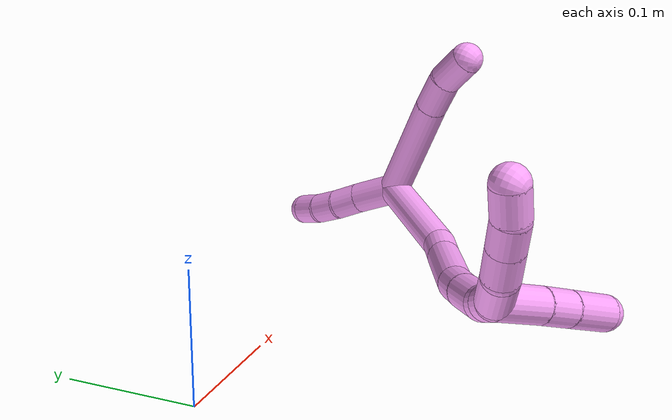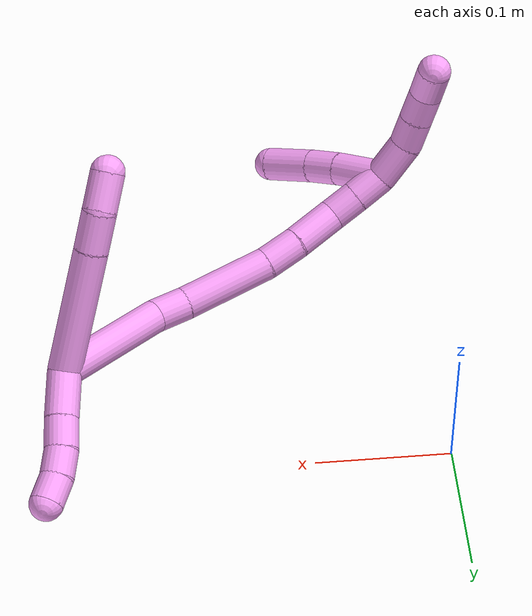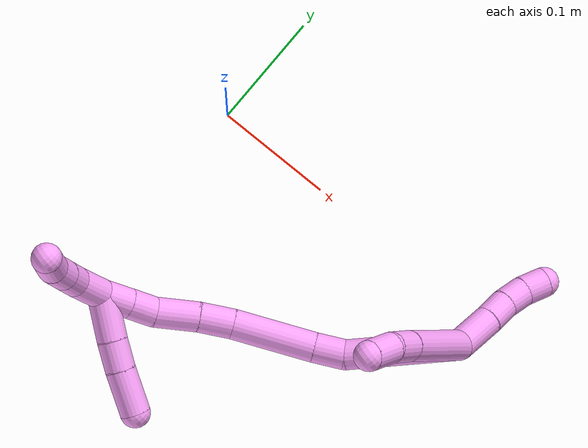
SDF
<sdf version="1.7">
 <world name="default">
  <model name="4">
   <static>0</static>
   <link name="4">
    <collision name="collision-cylinder-e_1_2_8">
     <pose>-0.000795 -0.044937 -0.012543 1.84299 -0.017038 -0.022444</pose>
     <geometry><cylinder><radius>0.0125</radius><length>0.093322</length></cylinder></geometry>
     <surface>
      <friction><ode><mu>1.16</mu><mu2>1.16</mu2><slip1>0</slip1><slip2>0</slip2></ode></friction>
      <contact><ode><kp>1e+06</kp><kd>1</kd><max_vel>0</max_vel><min_depth>0.001</min_depth></ode></contact>
     </surface>
    </collision>
    <visual name="visual-cylinder-e_1_2_8">
     <pose>-0.000795 -0.044937 -0.012543 1.84299 -0.017038 -0.022444</pose>
     <geometry><cylinder><radius>0.0125</radius><length>0.093322</length></cylinder></geometry>
     <material><ambient>1 0.65098 0.996078 1</ambient></material>
    </visual>
    <collision name="collision-cylinder-e_2_8_9">
     <pose>-0.0017 -0.103609 -0.029601 1.88841 -0.007606 -0.010507</pose>
     <geometry><cylinder><radius>0.0125</radius><length>0.028919</length></cylinder></geometry>
     <surface>
      <friction><ode><mu>1.16</mu><mu2>1.16</mu2><slip1>0</slip1><slip2>0</slip2></ode></friction>
      <contact><ode><kp>1e+06</kp><kd>1</kd><max_vel>0</max_vel><min_depth>0.001</min_depth></ode></contact>
     </surface>
    </collision>
    <visual name="visual-cylinder-e_2_8_9">
     <pose>-0.0017 -0.103609 -0.029601 1.88841 -0.007606 -0.010507</pose>
     <geometry><cylinder><radius>0.0125</radius><length>0.028919</length></cylinder></geometry>
     <material><ambient>1 0.65098 0.996078 1</ambient></material>
    </visual>
    <collision name="collision-cylinder-e_3_9_6">
     <pose>-0.001526 -0.128928 -0.041758 2.15397 0.020479 0.038042</pose>
     <geometry><cylinder><radius>0.0125</radius><length>0.027759</length></cylinder></geometry>
     <surface>
      <friction><ode><mu>1.16</mu><mu2>1.16</mu2><slip1>0</slip1><slip2>0</slip2></ode></friction>
      <contact><ode><kp>1e+06</kp><kd>1</kd><max_vel>0</max_vel><min_depth>0.001</min_depth></ode></contact>
     </surface>
    </collision>
    <visual name="visual-cylinder-e_3_9_6">
     <pose>-0.001526 -0.128928 -0.041758 2.15397 0.020479 0.038042</pose>
     <geometry><cylinder><radius>0.0125</radius><length>0.027759</length></cylinder></geometry>
     <material><ambient>1 0.65098 0.996078 1</ambient></material>
    </visual>
    <collision name="collision-cylinder-e_1_2_10">
     <pose>-0.003424 0.009822 0.014595 -0.592379 -0.19225 0.058832</pose>
     <geometry><cylinder><radius>0.0125</radius><length>0.035844</length></cylinder></geometry>
     <surface>
      <friction><ode><mu>1.16</mu><mu2>1.16</mu2><slip1>0</slip1><slip2>0</slip2></ode></friction>
      <contact><ode><kp>1e+06</kp><kd>1</kd><max_vel>0</max_vel><min_depth>0.001</min_depth></ode></contact>
     </surface>
    </collision>
    <visual name="visual-cylinder-e_1_2_10">
     <pose>-0.003424 0.009822 0.014595 -0.592379 -0.19225 0.058832</pose>
     <geometry><cylinder><radius>0.0125</radius><length>0.035844</length></cylinder></geometry>
     <material><ambient>1 0.65098 0.996078 1</ambient></material>
    </visual>
    <collision name="collision-cylinder-e_2_10_11">
     <pose>-0.009645 0.025989 0.038118 -0.617765 -0.250002 0.08015</pose>
     <geometry><cylinder><radius>0.0125</radius><length>0.022608</length></cylinder></geometry>
     <surface>
      <friction><ode><mu>1.16</mu><mu2>1.16</mu2><slip1>0</slip1><slip2>0</slip2></ode></friction>
      <contact><ode><kp>1e+06</kp><kd>1</kd><max_vel>0</max_vel><min_depth>0.001</min_depth></ode></contact>
     </surface>
    </collision>
    <visual name="visual-cylinder-e_2_10_11">
     <pose>-0.009645 0.025989 0.038118 -0.617765 -0.250002 0.08015</pose>
     <geometry><cylinder><radius>0.0125</radius><length>0.022608</length></cylinder></geometry>
     <material><ambient>1 0.65098 0.996078 1</ambient></material>
    </visual>
    <collision name="collision-cylinder-e_3_11_12">
     <pose>-0.013387 0.038108 0.055709 -0.588008 -0.090526 0.027426</pose>
     <geometry><cylinder><radius>0.0125</radius><length>0.02091</length></cylinder></geometry>
     <surface>
      <friction><ode><mu>1.16</mu><mu2>1.16</mu2><slip1>0</slip1><slip2>0</slip2></ode></friction>
      <contact><ode><kp>1e+06</kp><kd>1</kd><max_vel>0</max_vel><min_depth>0.001</min_depth></ode></contact>
     </surface>
    </collision>
    <visual name="visual-cylinder-e_3_11_12">
     <pose>-0.013387 0.038108 0.055709 -0.588008 -0.090526 0.027426</pose>
     <geometry><cylinder><radius>0.0125</radius><length>0.02091</length></cylinder></geometry>
     <material><ambient>1 0.65098 0.996078 1</ambient></material>
    </visual>
    <collision name="collision-cylinder-e_4_12_5">
     <pose>-0.013242 0.049012 0.07326 -0.523324 0.105879 -0.028379</pose>
     <geometry><cylinder><radius>0.0125</radius><length>0.020637</length></cylinder></geometry>
     <surface>
      <friction><ode><mu>1.16</mu><mu2>1.16</mu2><slip1>0</slip1><slip2>0</slip2></ode></friction>
      <contact><ode><kp>1e+06</kp><kd>1</kd><max_vel>0</max_vel><min_depth>0.001</min_depth></ode></contact>
     </surface>
    </collision>
    <visual name="visual-cylinder-e_4_12_5">
     <pose>-0.013242 0.049012 0.07326 -0.523324 0.105879 -0.028379</pose>
     <geometry><cylinder><radius>0.0125</radius><length>0.020637</length></cylinder></geometry>
     <material><ambient>1 0.65098 0.996078 1</ambient></material>
    </visual>
    <collision name="collision-cylinder-e_1_2_13">
     <pose>-0.025041 -0.003984 -0.039149 3.04018 -0.566715 -2.79651</pose>
     <geometry><cylinder><radius>0.0125</radius><length>0.093286</length></cylinder></geometry>
     <surface>
      <friction><ode><mu>1.16</mu><mu2>1.16</mu2><slip1>0</slip1><slip2>0</slip2></ode></friction>
      <contact><ode><kp>1e+06</kp><kd>1</kd><max_vel>0</max_vel><min_depth>0.001</min_depth></ode></contact>
     </surface>
    </collision>
    <visual name="visual-cylinder-e_1_2_13">
     <pose>-0.025041 -0.003984 -0.039149 3.04018 -0.566715 -2.79651</pose>
     <geometry><cylinder><radius>0.0125</radius><length>0.093286</length></cylinder></geometry>
     <material><ambient>1 0.65098 0.996078 1</ambient></material>
    </visual>
    <collision name="collision-cylinder-e_2_13_14">
     <pose>-0.059721 -0.011078 -0.08638 2.77415 -0.838869 -2.35191</pose>
     <geometry><cylinder><radius>0.0125</radius><length>0.025915</length></cylinder></geometry>
     <surface>
      <friction><ode><mu>1.16</mu><mu2>1.16</mu2><slip1>0</slip1><slip2>0</slip2></ode></friction>
      <contact><ode><kp>1e+06</kp><kd>1</kd><max_vel>0</max_vel><min_depth>0.001</min_depth></ode></contact>
     </surface>
    </collision>
    <visual name="visual-cylinder-e_2_13_14">
     <pose>-0.059721 -0.011078 -0.08638 2.77415 -0.838869 -2.35191</pose>
     <geometry><cylinder><radius>0.0125</radius><length>0.025915</length></cylinder></geometry>
     <material><ambient>1 0.65098 0.996078 1</ambient></material>
    </visual>
    <collision name="collision-cylinder-e_3_14_15">
     <pose>-0.094967 -0.026327 -0.114324 2.59307 -0.833012 -2.00867</pose>
     <geometry><cylinder><radius>0.0125</radius><length>0.069211</length></cylinder></geometry>
     <surface>
      <friction><ode><mu>1.16</mu><mu2>1.16</mu2><slip1>0</slip1><slip2>0</slip2></ode></friction>
      <contact><ode><kp>1e+06</kp><kd>1</kd><max_vel>0</max_vel><min_depth>0.001</min_depth></ode></contact>
     </surface>
    </collision>
    <visual name="visual-cylinder-e_3_14_15">
     <pose>-0.094967 -0.026327 -0.114324 2.59307 -0.833012 -2.00867</pose>
     <geometry><cylinder><radius>0.0125</radius><length>0.069211</length></cylinder></geometry>
     <material><ambient>1 0.65098 0.996078 1</ambient></material>
    </visual>
    <collision name="collision-cylinder-e_4_15_16">
     <pose>-0.129886 -0.044848 -0.142981 2.51371 -0.708479 -1.70067</pose>
     <geometry><cylinder><radius>0.0125</radius><length>0.028623</length></cylinder></geometry>
     <surface>
      <friction><ode><mu>1.16</mu><mu2>1.16</mu2><slip1>0</slip1><slip2>0</slip2></ode></friction>
      <contact><ode><kp>1e+06</kp><kd>1</kd><max_vel>0</max_vel><min_depth>0.001</min_depth></ode></contact>
     </surface>
    </collision>
    <visual name="visual-cylinder-e_4_15_16">
     <pose>-0.129886 -0.044848 -0.142981 2.51371 -0.708479 -1.70067</pose>
     <geometry><cylinder><radius>0.0125</radius><length>0.028623</length></cylinder></geometry>
     <material><ambient>1 0.65098 0.996078 1</ambient></material>
    </visual>
    <collision name="collision-cylinder-e_5_16_17">
     <pose>-0.149849 -0.059062 -0.164021 2.57268 -0.632445 -1.68307</pose>
     <geometry><cylinder><radius>0.0125</radius><length>0.036038</length></cylinder></geometry>
     <surface>
      <friction><ode><mu>1.16</mu><mu2>1.16</mu2><slip1>0</slip1><slip2>0</slip2></ode></friction>
      <contact><ode><kp>1e+06</kp><kd>1</kd><max_vel>0</max_vel><min_depth>0.001</min_depth></ode></contact>
     </surface>
    </collision>
    <visual name="visual-cylinder-e_5_16_17">
     <pose>-0.149849 -0.059062 -0.164021 2.57268 -0.632445 -1.68307</pose>
     <geometry><cylinder><radius>0.0125</radius><length>0.036038</length></cylinder></geometry>
     <material><ambient>1 0.65098 0.996078 1</ambient></material>
    </visual>
    <collision name="collision-cylinder-e_6_17_18">
     <pose>-0.167667 -0.074042 -0.181473 2.20023 -0.680844 -1.21626</pose>
     <geometry><cylinder><radius>0.0125</radius><length>0.022769</length></cylinder></geometry>
     <surface>
      <friction><ode><mu>1.16</mu><mu2>1.16</mu2><slip1>0</slip1><slip2>0</slip2></ode></friction>
      <contact><ode><kp>1e+06</kp><kd>1</kd><max_vel>0</max_vel><min_depth>0.001</min_depth></ode></contact>
     </surface>
    </collision>
    <visual name="visual-cylinder-e_6_17_18">
     <pose>-0.167667 -0.074042 -0.181473 2.20023 -0.680844 -1.21626</pose>
     <geometry><cylinder><radius>0.0125</radius><length>0.022769</length></cylinder></geometry>
     <material><ambient>1 0.65098 0.996078 1</ambient></material>
    </visual>
    <collision name="collision-cylinder-e_7_18_1">
     <pose>-0.18224 -0.088956 -0.192226 2.1911 -0.660209 -1.17489</pose>
     <geometry><cylinder><radius>0.0125</radius><length>0.024157</length></cylinder></geometry>
     <surface>
      <friction><ode><mu>1.16</mu><mu2>1.16</mu2><slip1>0</slip1><slip2>0</slip2></ode></friction>
      <contact><ode><kp>1e+06</kp><kd>1</kd><max_vel>0</max_vel><min_depth>0.001</min_depth></ode></contact>
     </surface>
    </collision>
    <visual name="visual-cylinder-e_7_18_1">
     <pose>-0.18224 -0.088956 -0.192226 2.1911 -0.660209 -1.17489</pose>
     <geometry><cylinder><radius>0.0125</radius><length>0.024157</length></cylinder></geometry>
     <material><ambient>1 0.65098 0.996078 1</ambient></material>
    </visual>
    <collision name="collision-cylinder-e_1_1_19">
     <pose>-0.173835 -0.090791 -0.206148 -2.52563 0.995156 -2.082</pose>
     <geometry><cylinder><radius>0.0125</radius><length>0.037701</length></cylinder></geometry>
     <surface>
      <friction><ode><mu>1.16</mu><mu2>1.16</mu2><slip1>0</slip1><slip2>0</slip2></ode></friction>
      <contact><ode><kp>1e+06</kp><kd>1</kd><max_vel>0</max_vel><min_depth>0.001</min_depth></ode></contact>
     </surface>
    </collision>
    <visual name="visual-cylinder-e_1_1_19">
     <pose>-0.173835 -0.090791 -0.206148 -2.52563 0.995156 -2.082</pose>
     <geometry><cylinder><radius>0.0125</radius><length>0.037701</length></cylinder></geometry>
     <material><ambient>1 0.65098 0.996078 1</ambient></material>
    </visual>
    <collision name="collision-cylinder-e_2_19_20">
     <pose>-0.147605 -0.080312 -0.219502 -2.40107 0.996246 -1.90186</pose>
     <geometry><cylinder><radius>0.0125</radius><length>0.02482</length></cylinder></geometry>
     <surface>
      <friction><ode><mu>1.16</mu><mu2>1.16</mu2><slip1>0</slip1><slip2>0</slip2></ode></friction>
      <contact><ode><kp>1e+06</kp><kd>1</kd><max_vel>0</max_vel><min_depth>0.001</min_depth></ode></contact>
     </surface>
    </collision>
    <visual name="visual-cylinder-e_2_19_20">
     <pose>-0.147605 -0.080312 -0.219502 -2.40107 0.996246 -1.90186</pose>
     <geometry><cylinder><radius>0.0125</radius><length>0.02482</length></cylinder></geometry>
     <material><ambient>1 0.65098 0.996078 1</ambient></material>
    </visual>
    <collision name="collision-cylinder-e_3_20_4">
     <pose>-0.121247 -0.068329 -0.230946 -2.28672 1.01725 -1.77155</pose>
     <geometry><cylinder><radius>0.0125</radius><length>0.037479</length></cylinder></geometry>
     <surface>
      <friction><ode><mu>1.16</mu><mu2>1.16</mu2><slip1>0</slip1><slip2>0</slip2></ode></friction>
      <contact><ode><kp>1e+06</kp><kd>1</kd><max_vel>0</max_vel><min_depth>0.001</min_depth></ode></contact>
     </surface>
    </collision>
    <visual name="visual-cylinder-e_3_20_4">
     <pose>-0.121247 -0.068329 -0.230946 -2.28672 1.01725 -1.77155</pose>
     <geometry><cylinder><radius>0.0125</radius><length>0.037479</length></cylinder></geometry>
     <material><ambient>1 0.65098 0.996078 1</ambient></material>
    </visual>
    <collision name="collision-cylinder-e_1_1_21">
     <pose>-0.195956 -0.111056 -0.201199 1.80541 -0.404347 -0.508248</pose>
     <geometry><cylinder><radius>0.0125</radius><length>0.032066</length></cylinder></geometry>
     <surface>
      <friction><ode><mu>1.16</mu><mu2>1.16</mu2><slip1>0</slip1><slip2>0</slip2></ode></friction>
      <contact><ode><kp>1e+06</kp><kd>1</kd><max_vel>0</max_vel><min_depth>0.001</min_depth></ode></contact>
     </surface>
    </collision>
    <visual name="visual-cylinder-e_1_1_21">
     <pose>-0.195956 -0.111056 -0.201199 1.80541 -0.404347 -0.508248</pose>
     <geometry><cylinder><radius>0.0125</radius><length>0.032066</length></cylinder></geometry>
     <material><ambient>1 0.65098 0.996078 1</ambient></material>
    </visual>
    <collision name="collision-cylinder-e_2_21_22">
     <pose>-0.203608 -0.136854 -0.205083 1.61072 -0.116737 -0.121481</pose>
     <geometry><cylinder><radius>0.0125</radius><length>0.0231</length></cylinder></geometry>
     <surface>
      <friction><ode><mu>1.16</mu><mu2>1.16</mu2><slip1>0</slip1><slip2>0</slip2></ode></friction>
      <contact><ode><kp>1e+06</kp><kd>1</kd><max_vel>0</max_vel><min_depth>0.001</min_depth></ode></contact>
     </surface>
    </collision>
    <visual name="visual-cylinder-e_2_21_22">
     <pose>-0.203608 -0.136854 -0.205083 1.61072 -0.116737 -0.121481</pose>
     <geometry><cylinder><radius>0.0125</radius><length>0.0231</length></cylinder></geometry>
     <material><ambient>1 0.65098 0.996078 1</ambient></material>
    </visual>
    <collision name="collision-cylinder-e_3_22_23">
     <pose>-0.206242 -0.159245 -0.20595 1.60818 -0.117242 -0.121699</pose>
     <geometry><cylinder><radius>0.0125</radius><length>0.022024</length></cylinder></geometry>
     <surface>
      <friction><ode><mu>1.16</mu><mu2>1.16</mu2><slip1>0</slip1><slip2>0</slip2></ode></friction>
      <contact><ode><kp>1e+06</kp><kd>1</kd><max_vel>0</max_vel><min_depth>0.001</min_depth></ode></contact>
     </surface>
    </collision>
    <visual name="visual-cylinder-e_3_22_23">
     <pose>-0.206242 -0.159245 -0.20595 1.60818 -0.117242 -0.121699</pose>
     <geometry><cylinder><radius>0.0125</radius><length>0.022024</length></cylinder></geometry>
     <material><ambient>1 0.65098 0.996078 1</ambient></material>
    </visual>
    <collision name="collision-cylinder-e_4_23_3">
     <pose>-0.208412 -0.181356 -0.204292 1.38805 -0.077373 -0.064394</pose>
     <geometry><cylinder><radius>0.0125</radius><length>0.02281</length></cylinder></geometry>
     <surface>
      <friction><ode><mu>1.16</mu><mu2>1.16</mu2><slip1>0</slip1><slip2>0</slip2></ode></friction>
      <contact><ode><kp>1e+06</kp><kd>1</kd><max_vel>0</max_vel><min_depth>0.001</min_depth></ode></contact>
     </surface>
    </collision>
    <visual name="visual-cylinder-e_4_23_3">
     <pose>-0.208412 -0.181356 -0.204292 1.38805 -0.077373 -0.064394</pose>
     <geometry><cylinder><radius>0.0125</radius><length>0.02281</length></cylinder></geometry>
     <material><ambient>1 0.65098 0.996078 1</ambient></material>
    </visual>
    <collision name="collision-sphere-3">
     <pose>-0.209293 -0.192537 -0.202226 0 -0 0</pose>
     <geometry><sphere><radius>0.0125</radius></sphere></geometry>
     <surface>
      <friction><ode><mu>1.16</mu><mu2>1.16</mu2><slip1>0</slip1><slip2>0</slip2></ode></friction>
      <contact><ode><kp>1e+06</kp><kd>1</kd><max_vel>0</max_vel><min_depth>0.001</min_depth></ode></contact>
     </surface>
    </collision>
    <visual name="visual-sphere-3">
     <pose>-0.209293 -0.192537 -0.202226 0 -0 0</pose>
     <geometry><sphere><radius>0.0125</radius></sphere></geometry>
     <material><ambient>1 0.65098 0.996078 1</ambient></material>
    </visual>
    <collision name="collision-sphere-23">
     <pose>-0.20753 -0.170174 -0.206359 0 -0 0</pose>
     <geometry><sphere><radius>0.0125</radius></sphere></geometry>
     <surface>
      <friction><ode><mu>1.16</mu><mu2>1.16</mu2><slip1>0</slip1><slip2>0</slip2></ode></friction>
      <contact><ode><kp>1e+06</kp><kd>1</kd><max_vel>0</max_vel><min_depth>0.001</min_depth></ode></contact>
     </surface>
    </collision>
    <visual name="visual-sphere-23">
     <pose>-0.20753 -0.170174 -0.206359 0 -0 0</pose>
     <geometry><sphere><radius>0.0125</radius></sphere></geometry>
     <material><ambient>1 0.65098 0.996078 1</ambient></material>
    </visual>
    <collision name="collision-sphere-22">
     <pose>-0.204954 -0.148317 -0.205541 0 -0 0</pose>
     <geometry><sphere><radius>0.0125</radius></sphere></geometry>
     <surface>
      <friction><ode><mu>1.16</mu><mu2>1.16</mu2><slip1>0</slip1><slip2>0</slip2></ode></friction>
      <contact><ode><kp>1e+06</kp><kd>1</kd><max_vel>0</max_vel><min_depth>0.001</min_depth></ode></contact>
     </surface>
    </collision>
    <visual name="visual-sphere-22">
     <pose>-0.204954 -0.148317 -0.205541 0 -0 0</pose>
     <geometry><sphere><radius>0.0125</radius></sphere></geometry>
     <material><ambient>1 0.65098 0.996078 1</ambient></material>
    </visual>
    <collision name="collision-sphere-21">
     <pose>-0.202263 -0.125392 -0.204625 0 -0 0</pose>
     <geometry><sphere><radius>0.0125</radius></sphere></geometry>
     <surface>
      <friction><ode><mu>1.16</mu><mu2>1.16</mu2><slip1>0</slip1><slip2>0</slip2></ode></friction>
      <contact><ode><kp>1e+06</kp><kd>1</kd><max_vel>0</max_vel><min_depth>0.001</min_depth></ode></contact>
     </surface>
    </collision>
    <visual name="visual-sphere-21">
     <pose>-0.202263 -0.125392 -0.204625 0 -0 0</pose>
     <geometry><sphere><radius>0.0125</radius></sphere></geometry>
     <material><ambient>1 0.65098 0.996078 1</ambient></material>
    </visual>
    <collision name="collision-sphere-4">
     <pose>-0.105306 -0.060896 -0.237411 0 -0 0</pose>
     <geometry><sphere><radius>0.0125</radius></sphere></geometry>
     <surface>
      <friction><ode><mu>1.16</mu><mu2>1.16</mu2><slip1>0</slip1><slip2>0</slip2></ode></friction>
      <contact><ode><kp>1e+06</kp><kd>1</kd><max_vel>0</max_vel><min_depth>0.001</min_depth></ode></contact>
     </surface>
    </collision>
    <visual name="visual-sphere-4">
     <pose>-0.105306 -0.060896 -0.237411 0 -0 0</pose>
     <geometry><sphere><radius>0.0125</radius></sphere></geometry>
     <material><ambient>1 0.65098 0.996078 1</ambient></material>
    </visual>
    <collision name="collision-sphere-20">
     <pose>-0.137188 -0.075762 -0.22448 0 -0 0</pose>
     <geometry><sphere><radius>0.0125</radius></sphere></geometry>
     <surface>
      <friction><ode><mu>1.16</mu><mu2>1.16</mu2><slip1>0</slip1><slip2>0</slip2></ode></friction>
      <contact><ode><kp>1e+06</kp><kd>1</kd><max_vel>0</max_vel><min_depth>0.001</min_depth></ode></contact>
     </surface>
    </collision>
    <visual name="visual-sphere-20">
     <pose>-0.137188 -0.075762 -0.22448 0 -0 0</pose>
     <geometry><sphere><radius>0.0125</radius></sphere></geometry>
     <material><ambient>1 0.65098 0.996078 1</ambient></material>
    </visual>
    <collision name="collision-sphere-11">
     <pose>-0.012442 0.032333 0.047046 0 -0 0</pose>
     <geometry><sphere><radius>0.0125</radius></sphere></geometry>
     <surface>
      <friction><ode><mu>1.16</mu><mu2>1.16</mu2><slip1>0</slip1><slip2>0</slip2></ode></friction>
      <contact><ode><kp>1e+06</kp><kd>1</kd><max_vel>0</max_vel><min_depth>0.001</min_depth></ode></contact>
     </surface>
    </collision>
    <visual name="visual-sphere-11">
     <pose>-0.012442 0.032333 0.047046 0 -0 0</pose>
     <geometry><sphere><radius>0.0125</radius></sphere></geometry>
     <material><ambient>1 0.65098 0.996078 1</ambient></material>
    </visual>
    <collision name="collision-sphere-10">
     <pose>-0.006849 0.019645 0.029189 0 -0 0</pose>
     <geometry><sphere><radius>0.0125</radius></sphere></geometry>
     <surface>
      <friction><ode><mu>1.16</mu><mu2>1.16</mu2><slip1>0</slip1><slip2>0</slip2></ode></friction>
      <contact><ode><kp>1e+06</kp><kd>1</kd><max_vel>0</max_vel><min_depth>0.001</min_depth></ode></contact>
     </surface>
    </collision>
    <visual name="visual-sphere-10">
     <pose>-0.006849 0.019645 0.029189 0 -0 0</pose>
     <geometry><sphere><radius>0.0125</radius></sphere></geometry>
     <material><ambient>1 0.65098 0.996078 1</ambient></material>
    </visual>
    <collision name="collision-sphere-6">
     <pose>-0.001241 -0.140511 -0.0494 0 -0 0</pose>
     <geometry><sphere><radius>0.0125</radius></sphere></geometry>
     <surface>
      <friction><ode><mu>1.16</mu><mu2>1.16</mu2><slip1>0</slip1><slip2>0</slip2></ode></friction>
      <contact><ode><kp>1e+06</kp><kd>1</kd><max_vel>0</max_vel><min_depth>0.001</min_depth></ode></contact>
     </surface>
    </collision>
    <visual name="visual-sphere-6">
     <pose>-0.001241 -0.140511 -0.0494 0 -0 0</pose>
     <geometry><sphere><radius>0.0125</radius></sphere></geometry>
     <material><ambient>1 0.65098 0.996078 1</ambient></material>
    </visual>
    <collision name="collision-sphere-9">
     <pose>-0.00181 -0.117345 -0.034117 0 -0 0</pose>
     <geometry><sphere><radius>0.0125</radius></sphere></geometry>
     <surface>
      <friction><ode><mu>1.16</mu><mu2>1.16</mu2><slip1>0</slip1><slip2>0</slip2></ode></friction>
      <contact><ode><kp>1e+06</kp><kd>1</kd><max_vel>0</max_vel><min_depth>0.001</min_depth></ode></contact>
     </surface>
    </collision>
    <visual name="visual-sphere-9">
     <pose>-0.00181 -0.117345 -0.034117 0 -0 0</pose>
     <geometry><sphere><radius>0.0125</radius></sphere></geometry>
     <material><ambient>1 0.65098 0.996078 1</ambient></material>
    </visual>
    <collision name="collision-sphere-2">
     <geometry><sphere><radius>0.0125</radius></sphere></geometry>
     <surface>
      <friction><ode><mu>1.16</mu><mu2>1.16</mu2><slip1>0</slip1><slip2>0</slip2></ode></friction>
      <contact><ode><kp>1e+06</kp><kd>1</kd><max_vel>0</max_vel><min_depth>0.001</min_depth></ode></contact>
     </surface>
    </collision>
    <visual name="visual-sphere-2">
     <geometry><sphere><radius>0.0125</radius></sphere></geometry>
     <material><ambient>1 0.65098 0.996078 1</ambient></material>
    </visual>
    <collision name="collision-sphere-19">
     <pose>-0.158022 -0.084862 -0.214524 0 -0 0</pose>
     <geometry><sphere><radius>0.0125</radius></sphere></geometry>
     <surface>
      <friction><ode><mu>1.16</mu><mu2>1.16</mu2><slip1>0</slip1><slip2>0</slip2></ode></friction>
      <contact><ode><kp>1e+06</kp><kd>1</kd><max_vel>0</max_vel><min_depth>0.001</min_depth></ode></contact>
     </surface>
    </collision>
    <visual name="visual-sphere-19">
     <pose>-0.158022 -0.084862 -0.214524 0 -0 0</pose>
     <geometry><sphere><radius>0.0125</radius></sphere></geometry>
     <material><ambient>1 0.65098 0.996078 1</ambient></material>
    </visual>
    <collision name="collision-sphere-8">
     <pose>-0.00159 -0.089873 -0.025086 0 -0 0</pose>
     <geometry><sphere><radius>0.0125</radius></sphere></geometry>
     <surface>
      <friction><ode><mu>1.16</mu><mu2>1.16</mu2><slip1>0</slip1><slip2>0</slip2></ode></friction>
      <contact><ode><kp>1e+06</kp><kd>1</kd><max_vel>0</max_vel><min_depth>0.001</min_depth></ode></contact>
     </surface>
    </collision>
    <visual name="visual-sphere-8">
     <pose>-0.00159 -0.089873 -0.025086 0 -0 0</pose>
     <geometry><sphere><radius>0.0125</radius></sphere></geometry>
     <material><ambient>1 0.65098 0.996078 1</ambient></material>
    </visual>
    <collision name="collision-sphere-12">
     <pose>-0.014332 0.043884 0.064373 0 -0 0</pose>
     <geometry><sphere><radius>0.0125</radius></sphere></geometry>
     <surface>
      <friction><ode><mu>1.16</mu><mu2>1.16</mu2><slip1>0</slip1><slip2>0</slip2></ode></friction>
      <contact><ode><kp>1e+06</kp><kd>1</kd><max_vel>0</max_vel><min_depth>0.001</min_depth></ode></contact>
     </surface>
    </collision>
    <visual name="visual-sphere-12">
     <pose>-0.014332 0.043884 0.064373 0 -0 0</pose>
     <geometry><sphere><radius>0.0125</radius></sphere></geometry>
     <material><ambient>1 0.65098 0.996078 1</ambient></material>
    </visual>
    <collision name="collision-sphere-5">
     <pose>-0.012152 0.05414 0.082148 0 -0 0</pose>
     <geometry><sphere><radius>0.0125</radius></sphere></geometry>
     <surface>
      <friction><ode><mu>1.16</mu><mu2>1.16</mu2><slip1>0</slip1><slip2>0</slip2></ode></friction>
      <contact><ode><kp>1e+06</kp><kd>1</kd><max_vel>0</max_vel><min_depth>0.001</min_depth></ode></contact>
     </surface>
    </collision>
    <visual name="visual-sphere-5">
     <pose>-0.012152 0.05414 0.082148 0 -0 0</pose>
     <geometry><sphere><radius>0.0125</radius></sphere></geometry>
     <material><ambient>1 0.65098 0.996078 1</ambient></material>
    </visual>
    <collision name="collision-sphere-13">
     <pose>-0.050082 -0.007967 -0.078298 0 -0 0</pose>
     <geometry><sphere><radius>0.0125</radius></sphere></geometry>
     <surface>
      <friction><ode><mu>1.16</mu><mu2>1.16</mu2><slip1>0</slip1><slip2>0</slip2></ode></friction>
      <contact><ode><kp>1e+06</kp><kd>1</kd><max_vel>0</max_vel><min_depth>0.001</min_depth></ode></contact>
     </surface>
    </collision>
    <visual name="visual-sphere-13">
     <pose>-0.050082 -0.007967 -0.078298 0 -0 0</pose>
     <geometry><sphere><radius>0.0125</radius></sphere></geometry>
     <material><ambient>1 0.65098 0.996078 1</ambient></material>
    </visual>
    <collision name="collision-sphere-14">
     <pose>-0.06936 -0.014189 -0.094461 0 -0 0</pose>
     <geometry><sphere><radius>0.0125</radius></sphere></geometry>
     <surface>
      <friction><ode><mu>1.16</mu><mu2>1.16</mu2><slip1>0</slip1><slip2>0</slip2></ode></friction>
      <contact><ode><kp>1e+06</kp><kd>1</kd><max_vel>0</max_vel><min_depth>0.001</min_depth></ode></contact>
     </surface>
    </collision>
    <visual name="visual-sphere-14">
     <pose>-0.06936 -0.014189 -0.094461 0 -0 0</pose>
     <geometry><sphere><radius>0.0125</radius></sphere></geometry>
     <material><ambient>1 0.65098 0.996078 1</ambient></material>
    </visual>
    <collision name="collision-sphere-15">
     <pose>-0.120573 -0.038464 -0.134186 0 -0 0</pose>
     <geometry><sphere><radius>0.0125</radius></sphere></geometry>
     <surface>
      <friction><ode><mu>1.16</mu><mu2>1.16</mu2><slip1>0</slip1><slip2>0</slip2></ode></friction>
      <contact><ode><kp>1e+06</kp><kd>1</kd><max_vel>0</max_vel><min_depth>0.001</min_depth></ode></contact>
     </surface>
    </collision>
    <visual name="visual-sphere-15">
     <pose>-0.120573 -0.038464 -0.134186 0 -0 0</pose>
     <geometry><sphere><radius>0.0125</radius></sphere></geometry>
     <material><ambient>1 0.65098 0.996078 1</ambient></material>
    </visual>
    <collision name="collision-sphere-16">
     <pose>-0.139198 -0.051232 -0.151776 0 -0 0</pose>
     <geometry><sphere><radius>0.0125</radius></sphere></geometry>
     <surface>
      <friction><ode><mu>1.16</mu><mu2>1.16</mu2><slip1>0</slip1><slip2>0</slip2></ode></friction>
      <contact><ode><kp>1e+06</kp><kd>1</kd><max_vel>0</max_vel><min_depth>0.001</min_depth></ode></contact>
     </surface>
    </collision>
    <visual name="visual-sphere-16">
     <pose>-0.139198 -0.051232 -0.151776 0 -0 0</pose>
     <geometry><sphere><radius>0.0125</radius></sphere></geometry>
     <material><ambient>1 0.65098 0.996078 1</ambient></material>
    </visual>
    <collision name="collision-sphere-17">
     <pose>-0.160501 -0.066891 -0.176265 0 -0 0</pose>
     <geometry><sphere><radius>0.0125</radius></sphere></geometry>
     <surface>
      <friction><ode><mu>1.16</mu><mu2>1.16</mu2><slip1>0</slip1><slip2>0</slip2></ode></friction>
      <contact><ode><kp>1e+06</kp><kd>1</kd><max_vel>0</max_vel><min_depth>0.001</min_depth></ode></contact>
     </surface>
    </collision>
    <visual name="visual-sphere-17">
     <pose>-0.160501 -0.066891 -0.176265 0 -0 0</pose>
     <geometry><sphere><radius>0.0125</radius></sphere></geometry>
     <material><ambient>1 0.65098 0.996078 1</ambient></material>
    </visual>
    <collision name="collision-sphere-18">
     <pose>-0.174833 -0.081193 -0.186681 0 -0 0</pose>
     <geometry><sphere><radius>0.0125</radius></sphere></geometry>
     <surface>
      <friction><ode><mu>1.16</mu><mu2>1.16</mu2><slip1>0</slip1><slip2>0</slip2></ode></friction>
      <contact><ode><kp>1e+06</kp><kd>1</kd><max_vel>0</max_vel><min_depth>0.001</min_depth></ode></contact>
     </surface>
    </collision>
    <visual name="visual-sphere-18">
     <pose>-0.174833 -0.081193 -0.186681 0 -0 0</pose>
     <geometry><sphere><radius>0.0125</radius></sphere></geometry>
     <material><ambient>1 0.65098 0.996078 1</ambient></material>
    </visual>
    <collision name="collision-sphere-1">
     <pose>-0.189648 -0.096719 -0.197772 0 -0 0</pose>
     <geometry><sphere><radius>0.0125</radius></sphere></geometry>
     <surface>
      <friction><ode><mu>1.16</mu><mu2>1.16</mu2><slip1>0</slip1><slip2>0</slip2></ode></friction>
      <contact><ode><kp>1e+06</kp><kd>1</kd><max_vel>0</max_vel><min_depth>0.001</min_depth></ode></contact>
     </surface>
    </collision>
    <visual name="visual-sphere-1">
     <pose>-0.189648 -0.096719 -0.197772 0 -0 0</pose>
     <geometry><sphere><radius>0.0125</radius></sphere></geometry>
     <material><ambient>1 0.65098 0.996078 1</ambient></material>
    </visual>
    <inertial>
     <pose>-0.085198 -0.053456 -0.098622 0 -0 0</pose>
     <mass>0.75</mass>
     <inertia>
      <ixx>-4.3e-05</ixx>
      <ixy>0</ixy>
      <ixz>0</ixz>
      <iyy>1.6e-05</iyy>
      <iyz>0</iyz>
      <izz>0.000143</izz>
     </inertia>
    </inertial>
   </link>
   <pose>0.277106 -0.040209 0.073921 -1.35654 -0.143131 -0.272534</pose>
  </model>
 </world>
</sdf>
